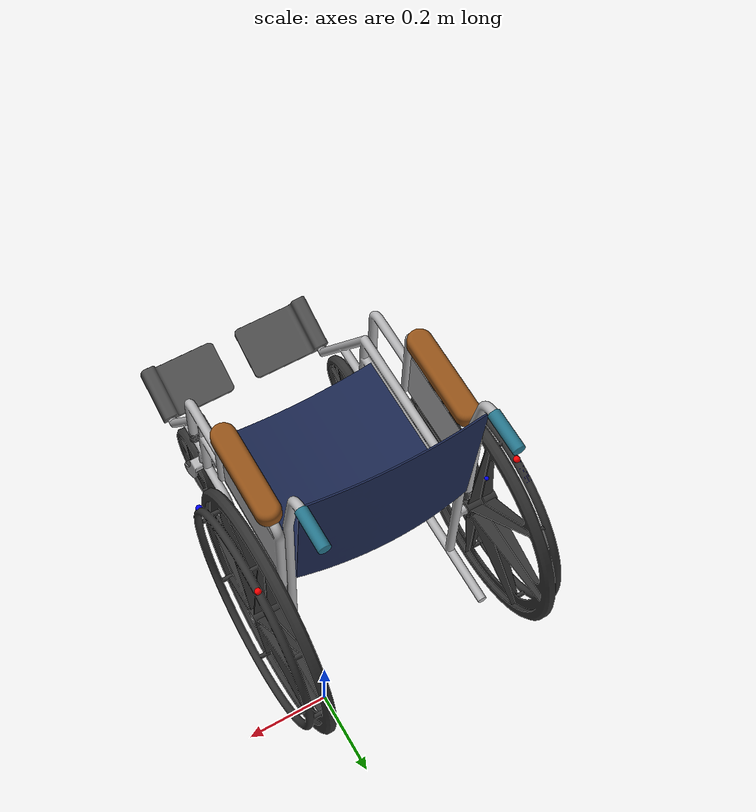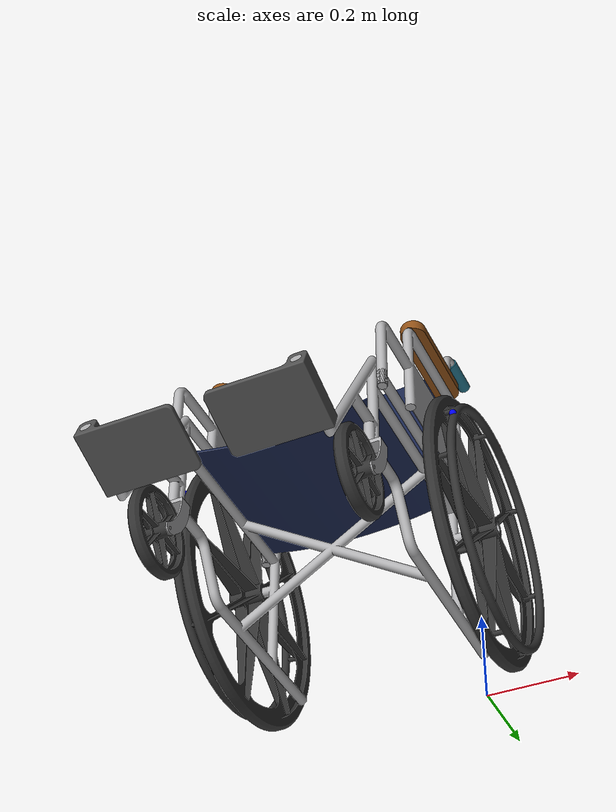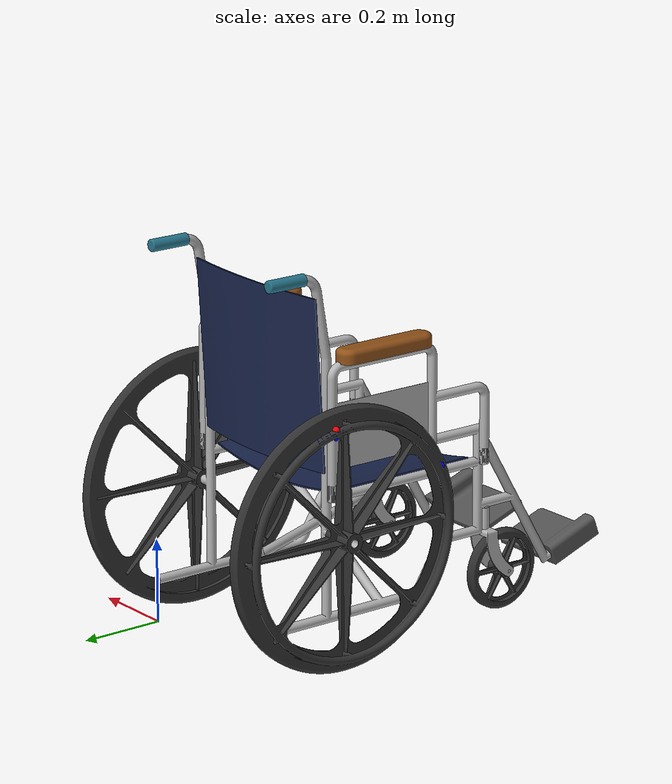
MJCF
<mujoco model="Wheelchair">
    <compiler meshdir="mesh" angle="radian"/>

    <default>
        <!-- CAD coordinate convention carried from the source model -->
        <geom type="mesh" xyaxes="1 0 0 0 1 0" conaffinity="1" contype="1"/>
    </default>

    <include file="assets/wheelchair_assets.xml"/>

    <worldbody>
        <include file="assets/wheelchair_chain.xml"/>
    </worldbody>

    <contact>
        <exclude body1="static" body2="left_caster_wheel"/>
        <exclude body1="static" body2="right_caster_wheel"/>
    </contact>
</mujoco>

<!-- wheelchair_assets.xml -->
<mujocoinclude model="wheelchair_assets">
    <asset>
        <!-- materials -->
        <material name="dark_blue" rgba="0.098 0.145 0.302 1"/>
        <material name="cyan" rgba="0.149 0.463 0.55 1" shininess="0.9"/>
        <material name="orange" rgba="0.576 0.322 0.094 1" shininess="0.9"/>
        <material name="metal" rgba="0.706 0.706 0.713 1" shininess="0.9"/>
        <material name="grey" rgba="0.329 0.329 0.329 1"/>
        <material name="dark_grey" rgba="0.196 0.196 0.196 1"/>
        <!-- chair-hardware meshes (meshdir resolves to ./mesh) -->
        <mesh name="armrest1" file="Armrest_001.stl" scale="0.001 0.001 0.001"/>
        <mesh name="armrest2" file="Armrest_002.stl" scale="0.001 0.001 0.001"/>
        <mesh name="backrest" file="Backrest_001.stl" scale="0.001 0.001 0.001"/>
        <mesh name="caster_fork1" file="Caster_fork_001.stl" scale="0.001 0.001 0.001"/>
        <mesh name="caster_fork2" file="Caster_fork_002.stl" scale="0.001 0.001 0.001"/>
        <mesh name="caster_wheel1" file="Caster_wheel_001.stl" scale="0.001 0.001 0.001"/>
        <mesh name="caster_wheel2" file="Caster_wheel_002.stl" scale="0.001 0.001 0.001"/>
        <mesh name="footplate1" file="Footplate_001.stl" scale="0.001 0.001 0.001"/>
        <mesh name="footplate2" file="Footplate_002.stl" scale="0.001 0.001 0.001"/>
        <mesh name="frame" file="Frame_001.stl" scale="0.001 0.001 0.001"/>
        <mesh name="pin1" file="Pin_001.stl" scale="0.001 0.001 0.001"/>
        <mesh name="pin2" file="Pin_002.stl" scale="0.001 0.001 0.001"/>
        <mesh name="push_handle1" file="Push_handle_001.stl" scale="0.001 0.001 0.001"/>
        <mesh name="push_handle2" file="Push_handle_002.stl" scale="0.001 0.001 0.001"/>
        <mesh name="rear_wheel1" file="Rear_wheel_001.stl" scale="0.001 0.001 0.001"/>
        <mesh name="rear_wheel2" file="Rear_wheel_002.stl" scale="0.001 0.001 0.001"/>
        <mesh name="seat" file="Seat_001.stl" scale="0.001 0.001 0.001"/>
        <mesh name="side_panel1" file="Side_panel_001.stl" scale="0.001 0.001 0.001"/>
        <mesh name="side_panel2" file="Side_panel_002.stl" scale="0.001 0.001 0.001"/>
        <mesh name="handrail_coll1" file="handrail_coll1.obj"/>
        <mesh name="handrail_coll2" file="handrail_coll2.obj"/>
        <mesh name="handrail_coll3" file="handrail_coll3.obj"/>
        <mesh name="handrail_coll4" file="handrail_coll4.obj"/>
        <mesh name="handrail_coll5" file="handrail_coll5.obj"/>
        <mesh name="handrail_coll6" file="handrail_coll6.obj"/>
        <mesh name="handrail_coll7" file="handrail_coll7.obj"/>
        <mesh name="handrail_coll8" file="handrail_coll8.obj"/>
        <mesh name="handrail_coll9" file="handrail_coll9.obj"/>
        <mesh name="handrail_coll10" file="handrail_coll10.obj"/>
        <mesh name="handrail_coll11" file="handrail_coll11.obj"/>
        <mesh name="handrail_coll12" file="handrail_coll12.obj"/>
        <mesh name="handrail_coll13" file="handrail_coll13.obj"/>
        <mesh name="handrail_coll14" file="handrail_coll14.obj"/>
        <mesh name="handrail_coll15" file="handrail_coll15.obj"/>
        <mesh name="handrail_coll16" file="handrail_coll16.obj"/>
    </asset>
</mujocoinclude>

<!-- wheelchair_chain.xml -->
<mujocoinclude model="wheelchair_chain">
    <body name="static" pos = "0 0 0.89 " quat="0 0 0.7071 0.7071">
        <freejoint name="wheelchair"/>
        <geom mesh="frame" material="metal" conaffinity="0" contype="0"/>
        <geom mesh="armrest1" material="orange"/>
        <geom mesh="armrest2" material="orange"/>
        <geom mesh="backrest" material="dark_blue"/>
        <geom mesh="footplate1" material="grey"/>
        <geom mesh="footplate2" material="grey"/>
        <geom mesh="push_handle1" material="cyan"/>
        <geom mesh="push_handle2" material="cyan"/>
        <geom mesh="seat" material="dark_blue"/>
        <geom mesh="side_panel1" material="metal"/>
        <geom mesh="side_panel2" material="metal"/>

        <body name = "left_rear_wheel" pos="-0.0635 -0.5842 -0.1524">
            <joint name= "left_rear" axis="-1 0 0" damping=".03"/>
            <geom mesh= "rear_wheel1" pos="0.0635 0.5842 0.1524" material="dark_grey" conaffinity="0" contype="0"/>
            <geom name = "left_rear_coll" type="cylinder" size="0.3048" fromto="-0.0127 0 0 0.0127 0 0" rgba="1 0 0 0"/>
            <body name = "left_handrail" pos="0 0 0">
                <geom mesh="handrail_coll1" pos="-0.0371 0 0" rgba="0 0 1 0"/>
                <geom mesh="handrail_coll2" pos="-0.0371 0 0" rgba="0 0 1 0"/>
                <geom mesh="handrail_coll3" pos="-0.0371 0 0" rgba="0 0 1 0"/>
                <geom mesh="handrail_coll4" pos="-0.0371 0 0" rgba="0 0 1 0"/>
                <geom mesh="handrail_coll5" pos="-0.0371 0 0" rgba="0 0 1 0"/>
                <geom mesh="handrail_coll6" pos="-0.0371 0 0" rgba="0 0 1 0"/>
                <geom mesh="handrail_coll7" pos="-0.0371 0 0" rgba="0 0 1 0"/>
                <geom mesh="handrail_coll8" pos="-0.0371 0 0" rgba="0 0 1 0"/>
                <geom mesh="handrail_coll9" pos="-0.0371 0 0" rgba="0 0 1 0"/>
                <geom mesh="handrail_coll10" pos="-0.0371 0 0" rgba="0 0 1 0"/>
                <geom mesh="handrail_coll11" pos="-0.0371 0 0" rgba="0 0 1 0"/>
                <geom mesh="handrail_coll12" pos="-0.0371 0 0" rgba="0 0 1 0"/>
                <geom mesh="handrail_coll13" pos="-0.0371 0 0" rgba="0 0 1 0"/>
                <geom mesh="handrail_coll14" pos="-0.0371 0 0" rgba="0 0 1 0"/>
                <geom mesh="handrail_coll15" pos="-0.0371 0 0" rgba="0 0 1 0"/>
                <geom mesh="handrail_coll16" pos="-0.0371 0 0" rgba="0 0 1 0"/>
            </body>
            <site name="wheelchair_grip_left" pos="-0.0371 0.27 0.05" size="0.005" rgba="0 1 0 0.5"/>
        </body>
        <site name="hand_start_right" pos="0.5324 -0.3142 -0.1024" size="0.008" rgba="1 0 0 1"/>
        <site name="hand_TARGET_right" pos="0.5324 -0.4542 -0.395" size="0.008" rgba="0 0 1 1"/>

        <site name="hand_start_left" pos="-0.101 -0.3142 -0.1024" size="0.008" rgba="1 0 0 1"/>
        <site name="hand_TARGET_left" pos="-0.101 -0.4542 -0.395" size="0.008" rgba="0 0 1 1"/>

        <body name = "right_rear_wheel" pos="0.4953 -0.5842 -0.1524">
            <joint name= "right_rear" axis="-1 0 0" damping=".03"/>
            <geom mesh= "rear_wheel2" pos="-0.4953 0.5842 0.1524" material="dark_grey" conaffinity="0" contype="0"/>
            <geom name = "right_rear_coll" type="cylinder" size="0.3048" fromto="-0.0127 0 0 0.0127 0 0" rgba="1 0 0 0"/>
            <body name = "right_handrail" pos="0.0371 0 0">
                <geom mesh="handrail_coll1" pos="0 0 0" rgba="0 0 1 1"/>
                <geom mesh="handrail_coll2" pos="0 0 0" rgba="0 0 1 0"/>
                <geom mesh="handrail_coll3" pos="0 0 0" rgba="0 0 1 0"/>
                <geom mesh="handrail_coll4" pos="0 0 0" rgba="0 0 1 0"/>
                <geom mesh="handrail_coll5" pos="0 0 0" rgba="0 0 1 0"/>
                <geom mesh="handrail_coll6" pos="0. 0 0" rgba="0 0 1 0"/>
                <geom mesh="handrail_coll7" pos="0 0 0" rgba="0 0 1 0"/>
                <geom mesh="handrail_coll8" pos="0 0 0" rgba="0 0 1 0"/>
                <geom mesh="handrail_coll9" pos="0 0 0" rgba="0 0 1 0"/>
                <geom mesh="handrail_coll10" pos="0. 0 0" rgba="0 0 1 0"/>
                <geom mesh="handrail_coll11" pos="0 0 0" rgba="0 0 1 0"/>
                <geom mesh="handrail_coll12" pos="0. 0 0" rgba="0 0 1 0"/>
                <geom mesh="handrail_coll13" pos="0 0 0" rgba="0 0 1 0"/>
                <geom mesh="handrail_coll14" pos="0 0 0" rgba="0 0 1 0"/>
                <geom mesh="handrail_coll15" pos="0 0 0" rgba="0 0 1 0"/>
                <geom mesh="handrail_coll16" pos="0 0 0" rgba="0 0 1 0"/>
            </body>

            <site name="wheelchair_grip_right" pos="0.0371 0.27 0.05" size="0.005" rgba="0 1 0 1"/>
            <site name="rail_bottom_right" pos="0.0371 0.25 0.05" size="0.005" rgba="0 0 1 1"/>

            <site name="rail_bottom_left" pos="-0.0371 0.25 0.05" size="0.005" rgba="0 0 1 1"/>

        </body>

        <body name = "left_fork" pos="0 -0.78105 -0.607055">
            <joint name= "left_fork" axis="0 -1 0" damping=".03" limited="true" range="-60 60"/>
            <geom mesh= "caster_fork1" pos="0 0.78105 0.607055" material="metal"/>
            <geom mesh= "pin1" pos="0 0.78105 0.607055" material="metal"/>

            <body name = "left_caster_wheel" pos="0 0 -0.049375">
                <joint name= "left_caster" axis="-1 0 0" damping=".03"/>
                <geom mesh= "caster_wheel1" pos="0 0.78105 0.65643" material="dark_grey"/>
            </body>

        </body>
        <body name = "right_fork" pos="0.4318 -0.78105 -0.60563">
            <joint name= "right_fork" axis="0 -1 0" damping=".03" limited="true" range="-60 60"/>
            <geom mesh= "caster_fork2" pos="-0.4318 0.78105 0.60563" material="metal"/>
            <geom mesh= "pin2" pos="-0.4318 0.78105 0.60563" material="metal"/>

            <body name = "right_caster_wheel" pos="0 0 -0.0508">
                <joint name= "right_caster" axis="-1 0 0" damping=".03"/>
                <geom mesh= "caster_wheel2" pos="-0.4318 0.78105 0.65643" material="dark_grey"/>
            </body>

        </body>
    </body>
</mujocoinclude>
